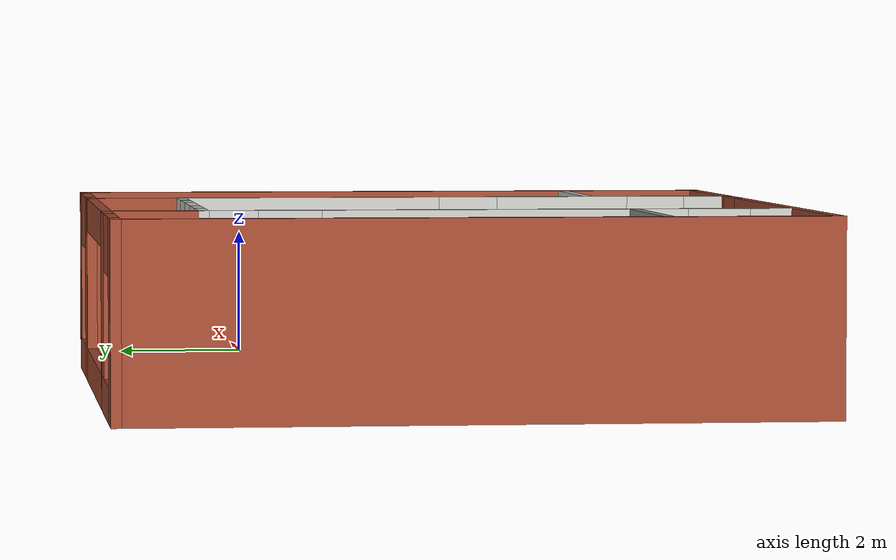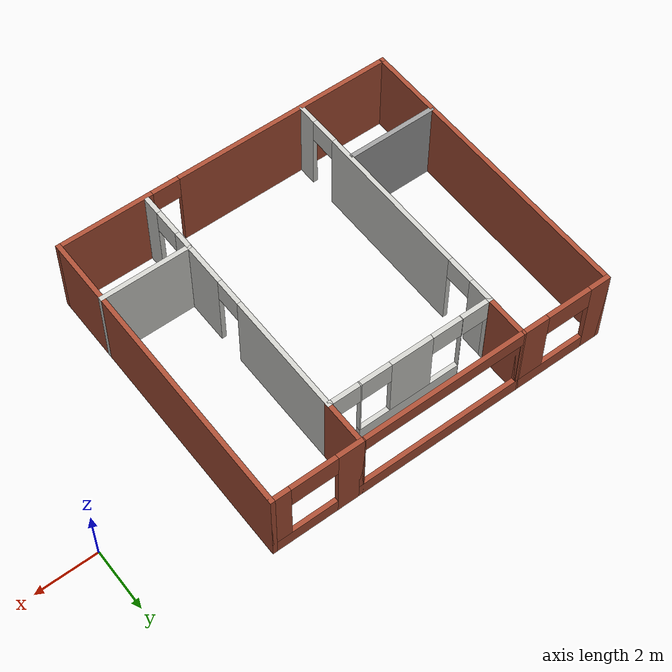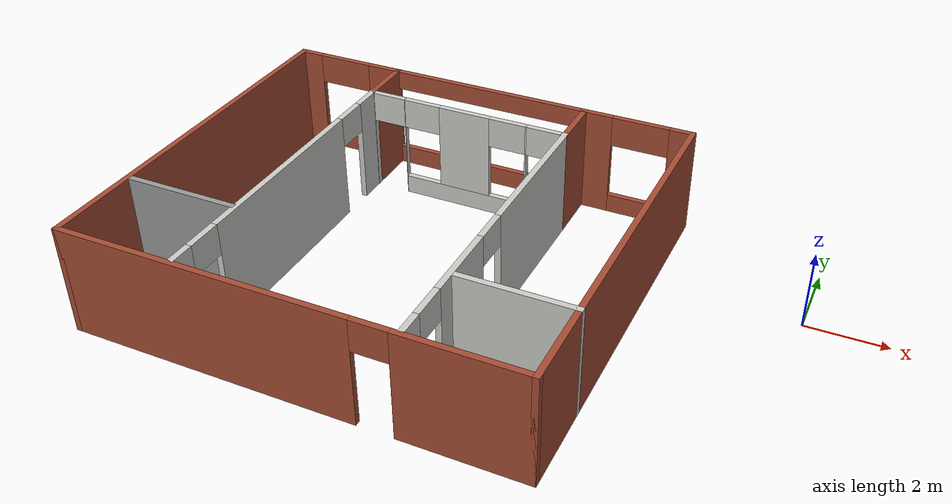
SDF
<?xml version='1.0'?>
<sdf version='1.6'>
  <model name='house'>
    <pose frame=''>-9.34944 -2.2 0 0 -0 0</pose>
    <link name='Wall_12'>
      <collision name='Wall_12_Collision'>
        <geometry>
          <box>
            <size>1.5 0.15 2.8</size>
          </box>
        </geometry>
        <pose frame=''>0 0 1.4 0 -0 0</pose>
      </collision>
      <visual name='Wall_12_Visual'>
        <pose frame=''>0 0 1.4 0 -0 0</pose>
        <geometry>
          <box>
            <size>1.5 0.15 2.8</size>
          </box>
        </geometry>
        <material>
          <script>
            <uri>file://media/materials/scripts/gazebo.material</uri>
            <name>Gazebo/Bricks</name>
          </script>
          <ambient>1 1 1 1</ambient>
        </material>
        <meta>
          <layer>0</layer>
        </meta>
      </visual>
      <pose frame=''>-2.65056 4.228 0 0 0 -1.5708</pose>
    </link>
    <link name='Wall_14'>
      <pose frame=''>0.040444 3.553 0 0 -0 0</pose>
      <visual name='Wall_14_Visual_0'>
        <pose frame=''>-2.6865 0 1.4 0 -0 0</pose>
        <geometry>
          <box>
            <size>0.159462 0.15 2.8</size>
          </box>
        </geometry>
        <material>
          <script>
            <uri>file://media/materials/scripts/gazebo.material</uri>
            <name>Gazebo/CeilingTiled</name>
          </script>
          <ambient>1 1 1 1</ambient>
        </material>
        <meta>
          <layer>0</layer>
        </meta>
      </visual>
      <collision name='Wall_14_Collision_0'>
        <geometry>
          <box>
            <size>0.159462 0.15 2.8</size>
          </box>
        </geometry>
        <pose frame=''>-2.6865 0 1.4 0 -0 0</pose>
      </collision>
      <visual name='Wall_14_Visual_1'>
        <pose frame=''>-1.70025 0 1.4 0 -0 0</pose>
        <geometry>
          <box>
            <size>0.013045 0.15 2.8</size>
          </box>
        </geometry>
        <material>
          <script>
            <uri>file://media/materials/scripts/gazebo.material</uri>
            <name>Gazebo/CeilingTiled</name>
          </script>
          <ambient>1 1 1 1</ambient>
        </material>
        <meta>
          <layer>0</layer>
        </meta>
      </visual>
      <collision name='Wall_14_Collision_1'>
        <geometry>
          <box>
            <size>0.013045 0.15 2.8</size>
          </box>
        </geometry>
        <pose frame=''>-1.70025 0 1.4 0 -0 0</pose>
      </collision>
      <visual name='Wall_14_Visual_2'>
        <pose frame=''>2.70996 0 1.4 0 -0 0</pose>
        <geometry>
          <box>
            <size>0.112546 0.15 2.8</size>
          </box>
        </geometry>
        <material>
          <script>
            <uri>file://media/materials/scripts/gazebo.material</uri>
            <name>Gazebo/CeilingTiled</name>
          </script>
          <ambient>1 1 1 1</ambient>
        </material>
        <meta>
          <layer>0</layer>
        </meta>
      </visual>
      <collision name='Wall_14_Collision_2'>
        <geometry>
          <box>
            <size>0.112546 0.15 2.8</size>
          </box>
        </geometry>
        <pose frame=''>2.70996 0 1.4 0 -0 0</pose>
      </collision>

      <visual name='Wall_14_Visual_4'>
        <pose frame=''>0.029981 0 0.25 0 -0 0</pose>
        <geometry>
          <box>
            <size>3.44741 0.15 0.5</size>
          </box>
        </geometry>
        <material>
          <script>
            <uri>file://media/materials/scripts/gazebo.material</uri>
            <name>Gazebo/CeilingTiled</name>
          </script>
          <ambient>1 1 1 1</ambient>
        </material>
        <meta>
          <layer>0</layer>
        </meta>
      </visual>
      <collision name='Wall_14_Collision_4'>
        <geometry>
          <box>
            <size>3.44741 0.15 0.5</size>
          </box>
        </geometry>
        <pose frame=''>0.029981 0 0.25 0 -0 0</pose>
      </collision>

      <visual name='Wall_14_Visual_6'>
        <pose frame=''>0.010082 0 1.65 0 -0 0</pose>
        <geometry>
          <box>
            <size>1.40761 0.15 2.3</size>
          </box>
        </geometry>
        <material>
          <script>
            <uri>file://media/materials/scripts/gazebo.material</uri>
            <name>Gazebo/CeilingTiled</name>
          </script>
          <ambient>1 1 1 1</ambient>
        </material>
        <meta>
          <layer>0</layer>
        </meta>
      </visual>
      <collision name='Wall_14_Collision_6'>
        <geometry>
          <box>
            <size>1.40761 0.15 2.3</size>
          </box>
        </geometry>
        <pose frame=''>0.010082 0 1.65 0 -0 0</pose>
      </collision>
      <visual name='Wall_14_Visual_7'>
        <pose frame=''>1.73379 0 1.65 0 -0 0</pose>
        <geometry>
          <box>
            <size>0.039797 0.15 2.3</size>
          </box>
        </geometry>
        <material>
          <script>
            <uri>file://media/materials/scripts/gazebo.material</uri>
            <name>Gazebo/CeilingTiled</name>
          </script>
          <ambient>1 1 1 1</ambient>
        </material>
        <meta>
          <layer>0</layer>
        </meta>
      </visual>
      <collision name='Wall_14_Collision_7'>
        <geometry>
          <box>
            <size>0.039797 0.15 2.3</size>
          </box>
        </geometry>
        <pose frame=''>1.73379 0 1.65 0 -0 0</pose>
      </collision>

      <visual name='Wall_14_Visual_9'>
        <pose frame=''>-1.19372 0 2.4 0 -0 0</pose>
        <geometry>
          <box>
            <size>1 0.15 0.8</size>
          </box>
        </geometry>
        <material>
          <script>
            <uri>file://media/materials/scripts/gazebo.material</uri>
            <name>Gazebo/CeilingTiled</name>
          </script>
          <ambient>1 1 1 1</ambient>
        </material>
        <meta>
          <layer>0</layer>
        </meta>
      </visual>
      <collision name='Wall_14_Collision_9'>
        <geometry>
          <box>
            <size>1 0.15 0.8</size>
          </box>
        </geometry>
        <pose frame=''>-1.19372 0 2.4 0 -0 0</pose>
      </collision>
      <visual name='Wall_14_Visual_10'>
        <pose frame=''>-2.15677 0 2.4 0 -0 0</pose>
        <geometry>
          <box>
            <size>0.9 0.15 0.8</size>
          </box>
        </geometry>
        <material>
          <script>
            <uri>file://media/materials/scripts/gazebo.material</uri>
            <name>Gazebo/CeilingTiled</name>
          </script>
          <ambient>1 1 1 1</ambient>
        </material>
        <meta>
          <layer>0</layer>
        </meta>
      </visual>
      <collision name='Wall_14_Collision_10'>
        <geometry>
          <box>
            <size>0.9 0.15 0.8</size>
          </box>
        </geometry>
        <pose frame=''>-2.15677 0 2.4 0 -0 0</pose>
      </collision>
      <visual name='Wall_14_Visual_11'>
        <pose frame=''>1.21389 0 2.4 0 -0 0</pose>
        <geometry>
          <box>
            <size>1 0.15 0.8</size>
          </box>
        </geometry>
        <material>
          <script>
            <uri>file://media/materials/scripts/gazebo.material</uri>
            <name>Gazebo/CeilingTiled</name>
          </script>
          <ambient>1 1 1 1</ambient>
        </material>
        <meta>
          <layer>0</layer>
        </meta>
      </visual>
      <collision name='Wall_14_Collision_11'>
        <geometry>
          <box>
            <size>1 0.15 0.8</size>
          </box>
        </geometry>
        <pose frame=''>1.21389 0 2.4 0 -0 0</pose>
      </collision>
      <visual name='Wall_14_Visual_12'>
        <pose frame=''>2.20369 0 2.4 0 -0 0</pose>
        <geometry>
          <box>
            <size>0.9 0.15 0.8</size>
          </box>
        </geometry>
        <material>
          <script>
            <uri>file://media/materials/scripts/gazebo.material</uri>
            <name>Gazebo/CeilingTiled</name>
          </script>
          <ambient>1 1 1 1</ambient>
        </material>
        <meta>
          <layer>0</layer>
        </meta>
      </visual>
      <collision name='Wall_14_Collision_12'>
        <geometry>
          <box>
            <size>0.9 0.15 0.8</size>
          </box>
        </geometry>
        <pose frame=''>2.20369 0 2.4 0 -0 0</pose>
      </collision>
    </link>
    <link name='Wall_2'>
      <pose frame=''>-4.15056 4.925 0 0 -0 0</pose>
      <visual name='Wall_2_Visual_0'>
        <pose frame=''>-1.22601 0 1.4 0 -0 0</pose>
        <geometry>
          <box>
            <size>0.697976 0.15 2.8</size>
          </box>
        </geometry>
        <material>
          <script>
            <uri>file://media/materials/scripts/gazebo.material</uri>
            <name>Gazebo/Bricks</name>
          </script>
          <ambient>1 1 1 1</ambient>
        </material>
        <meta>
          <layer>0</layer>
        </meta>
      </visual>
      <collision name='Wall_2_Collision_0'>
        <geometry>
          <box>
            <size>0.697976 0.15 2.8</size>
          </box>
        </geometry>
        <pose frame=''>-1.22601 0 1.4 0 -0 0</pose>
      </collision>
      <visual name='Wall_2_Visual_1'>
        <pose frame=''>0.348988 0 0.25 0 -0 0</pose>
        <geometry>
          <box>
            <size>2.45202 0.15 0.5</size>
          </box>
        </geometry>
        <material>
          <script>
            <uri>file://media/materials/scripts/gazebo.material</uri>
            <name>Gazebo/Bricks</name>
          </script>
          <ambient>1 1 1 1</ambient>
        </material>
        <meta>
          <layer>0</layer>
        </meta>
      </visual>
      <collision name='Wall_2_Collision_1'>
        <geometry>
          <box>
            <size>2.45202 0.15 0.5</size>
          </box>
        </geometry>
        <pose frame=''>0.348988 0 0.25 0 -0 0</pose>
      </collision>
      <visual name='Wall_2_Visual_2'>
        <pose frame=''>1.09899 0 1.65 0 -0 0</pose>
        <geometry>
          <box>
            <size>0.952024 0.15 2.3</size>
          </box>
        </geometry>
        <material>
          <script>
            <uri>file://media/materials/scripts/gazebo.material</uri>
            <name>Gazebo/Bricks</name>
          </script>
          <ambient>1 1 1 1</ambient>
        </material>
        <meta>
          <layer>0</layer>
        </meta>
      </visual>
      <collision name='Wall_2_Collision_2'>
        <geometry>
          <box>
            <size>0.952024 0.15 2.3</size>
          </box>
        </geometry>
        <pose frame=''>1.09899 0 1.65 0 -0 0</pose>
      </collision>
      <visual name='Wall_2_Visual_3'>
        <pose frame=''>-0.127024 0 2.4 0 -0 0</pose>
        <geometry>
          <box>
            <size>1.5 0.15 0.8</size>
          </box>
        </geometry>
        <material>
          <script>
            <uri>file://media/materials/scripts/gazebo.material</uri>
            <name>Gazebo/Bricks</name>
          </script>
          <ambient>1 1 1 1</ambient>
        </material>
        <meta>
          <layer>0</layer>
        </meta>
      </visual>
      <collision name='Wall_2_Collision_3'>
        <geometry>
          <box>
            <size>1.5 0.15 0.8</size>
          </box>
        </geometry>
        <pose frame=''>-0.127024 0 2.4 0 -0 0</pose>
      </collision>
    </link>
    <link name='Wall_3'>
      <pose frame=''>0.074445 4.925 0 0 -0 0</pose>
      <visual name='Wall_3_Visual_0'>
        <pose frame=''>-2.76234 0 1.4 0 -0 0</pose>
        <geometry>
          <box>
            <size>0.07533 0.15 2.8</size>
          </box>
        </geometry>
        <material>
          <script>
            <uri>file://media/materials/scripts/gazebo.material</uri>
            <name>Gazebo/Bricks</name>
          </script>
          <ambient>1 1 1 1</ambient>
        </material>
        <meta>
          <layer>0</layer>
        </meta>
      </visual>
      <collision name='Wall_3_Collision_0'>
        <geometry>
          <box>
            <size>0.07533 0.15 2.8</size>
          </box>
        </geometry>
        <pose frame=''>-2.76234 0 1.4 0 -0 0</pose>
      </collision>
      <visual name='Wall_3_Visual_1'>
        <pose frame=''>0.037665 0 0.25 0 -0 0</pose>
        <geometry>
          <box>
            <size>5.52467 0.15 0.5</size>
          </box>
        </geometry>
        <material>
          <script>
            <uri>file://media/materials/scripts/gazebo.material</uri>
            <name>Gazebo/Bricks</name>
          </script>
          <ambient>1 1 1 1</ambient>
        </material>
        <meta>
          <layer>0</layer>
        </meta>
      </visual>
      <collision name='Wall_3_Collision_1'>
        <geometry>
          <box>
            <size>5.52467 0.15 0.5</size>
          </box>
        </geometry>
        <pose frame=''>0.037665 0 0.25 0 -0 0</pose>
      </collision>
      <visual name='Wall_3_Visual_2'>
        <pose frame=''>2.71166 0 1.65 0 -0 0</pose>
        <geometry>
          <box>
            <size>0.17667 0.15 2.3</size>
          </box>
        </geometry>
        <material>
          <script>
            <uri>file://media/materials/scripts/gazebo.material</uri>
            <name>Gazebo/Bricks</name>
          </script>
          <ambient>1 1 1 1</ambient>
        </material>
        <meta>
          <layer>0</layer>
        </meta>
      </visual>
      <collision name='Wall_3_Collision_2'>
        <geometry>
          <box>
            <size>0.17667 0.15 2.3</size>
          </box>
        </geometry>
        <pose frame=''>2.71166 0 1.65 0 -0 0</pose>
      </collision>
      <visual name='Wall_3_Visual_3'>
        <pose frame=''>-0.05067 0 2.55 0 -0 0</pose>
        <geometry>
          <box>
            <size>5.348 0.15 0.5</size>
          </box>
        </geometry>
        <material>
          <script>
            <uri>file://media/materials/scripts/gazebo.material</uri>
            <name>Gazebo/Bricks</name>
          </script>
          <ambient>1 1 1 1</ambient>
        </material>
        <meta>
          <layer>0</layer>
        </meta>
      </visual>
      <collision name='Wall_3_Collision_3'>
        <geometry>
          <box>
            <size>5.348 0.15 0.5</size>
          </box>
        </geometry>
        <pose frame=''>-0.05067 0 2.55 0 -0 0</pose>
      </collision>
    </link>
    <link name='Wall_36'>
      <collision name='Wall_36_Collision'>
        <geometry>
          <box>
            <size>1.521 0.15 2.8</size>
          </box>
        </geometry>
        <pose frame=''>0 0 1.4 0 -0 0</pose>
      </collision>
      <visual name='Wall_36_Visual'>
        <pose frame=''>0 0 1.4 0 -0 0</pose>
        <geometry>
          <box>
            <size>1.521 0.15 2.8</size>
          </box>
        </geometry>
        <material>
          <script>
            <uri>file://media/materials/scripts/gazebo.material</uri>
            <name>Gazebo/Bricks</name>
          </script>
          <ambient>1 1 1 1</ambient>
        </material>
        <meta>
          <layer>0</layer>
        </meta>
      </visual>
      <pose frame=''>2.79944 4.2395 0 0 0 -1.5708</pose>
    </link>
    <link name='Wall_4'>
      <pose frame=''>4.22444 4.925 0 0 -0 0</pose>
      <visual name='Wall_4_Visual_0'>
        <pose frame=''>-1.07575 0 1.4 0 -0 0</pose>
        <geometry>
          <box>
            <size>0.848504 0.15 2.8</size>
          </box>
        </geometry>
        <material>
          <script>
            <uri>file://media/materials/scripts/gazebo.material</uri>
            <name>Gazebo/Bricks</name>
          </script>
          <ambient>1 1 1 1</ambient>
        </material>
        <meta>
          <layer>0</layer>
        </meta>
      </visual>
      <collision name='Wall_4_Collision_0'>
        <geometry>
          <box>
            <size>0.848504 0.15 2.8</size>
          </box>
        </geometry>
        <pose frame=''>-1.07575 0 1.4 0 -0 0</pose>
      </collision>
      <visual name='Wall_4_Visual_1'>
        <pose frame=''>0.424252 0 0.25 0 -0 0</pose>
        <geometry>
          <box>
            <size>2.1515 0.15 0.5</size>
          </box>
        </geometry>
        <material>
          <script>
            <uri>file://media/materials/scripts/gazebo.material</uri>
            <name>Gazebo/Bricks</name>
          </script>
          <ambient>1 1 1 1</ambient>
        </material>
        <meta>
          <layer>0</layer>
        </meta>
      </visual>
      <collision name='Wall_4_Collision_1'>
        <geometry>
          <box>
            <size>2.1515 0.15 0.5</size>
          </box>
        </geometry>
        <pose frame=''>0.424252 0 0.25 0 -0 0</pose>
      </collision>
      <visual name='Wall_4_Visual_2'>
        <pose frame=''>1.17425 0 1.65 0 -0 0</pose>
        <geometry>
          <box>
            <size>0.651496 0.15 2.3</size>
          </box>
        </geometry>
        <material>
          <script>
            <uri>file://media/materials/scripts/gazebo.material</uri>
            <name>Gazebo/Bricks</name>
          </script>
          <ambient>1 1 1 1</ambient>
        </material>
        <meta>
          <layer>0</layer>
        </meta>
      </visual>
      <collision name='Wall_4_Collision_2'>
        <geometry>
          <box>
            <size>0.651496 0.15 2.3</size>
          </box>
        </geometry>
        <pose frame=''>1.17425 0 1.65 0 -0 0</pose>
      </collision>
      <visual name='Wall_4_Visual_3'>
        <pose frame=''>0.098504 0 2.4 0 -0 0</pose>
        <geometry>
          <box>
            <size>1.5 0.15 0.8</size>
          </box>
        </geometry>
        <material>
          <script>
            <uri>file://media/materials/scripts/gazebo.material</uri>
            <name>Gazebo/Bricks</name>
          </script>
          <ambient>1 1 1 1</ambient>
        </material>
        <meta>
          <layer>0</layer>
        </meta>
      </visual>
      <collision name='Wall_4_Collision_3'>
        <geometry>
          <box>
            <size>1.5 0.15 0.8</size>
          </box>
        </geometry>
        <pose frame=''>0.098504 0 2.4 0 -0 0</pose>
      </collision>
    </link>
    <link name='Wall_41'>
      <pose frame=''>2.79944 -0.621 0 0 -0 1.5708</pose>
      <visual name='Wall_41_Visual_0'>
        <pose frame=''>-3.9395 0 1.4 0 -0 0</pose>
        <geometry>
          <box>
            <size>0.621 0.15 2.8</size>
          </box>
        </geometry>
        <material>
          <script>
            <uri>file://media/materials/scripts/gazebo.material</uri>
            <name>Gazebo/CeilingTiled</name>
          </script>
          <ambient>1 1 1 1</ambient>
        </material>
        <meta>
          <layer>0</layer>
        </meta>
      </visual>
      <collision name='Wall_41_Collision_0'>
        <geometry>
          <box>
            <size>0.621 0.15 2.8</size>
          </box>
        </geometry>
        <pose frame=''>-3.9395 0 1.4 0 -0 0</pose>
      </collision>
      <visual name='Wall_41_Visual_1'>
        <pose frame=''>-1.71426 0 1.4 0 -0 0</pose>
        <geometry>
          <box>
            <size>2.02948 0.15 2.8</size>
          </box>
        </geometry>
        <material>
          <script>
            <uri>file://media/materials/scripts/gazebo.material</uri>
            <name>Gazebo/CeilingTiled</name>
          </script>
          <ambient>1 1 1 1</ambient>
        </material>
        <meta>
          <layer>0</layer>
        </meta>
      </visual>
      <collision name='Wall_41_Collision_1'>
        <geometry>
          <box>
            <size>2.02948 0.15 2.8</size>
          </box>
        </geometry>
        <pose frame=''>-1.71426 0 1.4 0 -0 0</pose>
      </collision>
      <visual name='Wall_41_Visual_2'>
        <pose frame=''>2.22524 0 1.4 0 -0 0</pose>
        <geometry>
          <box>
            <size>4.04952 0.15 2.8</size>
          </box>
        </geometry>
        <material>
          <script>
            <uri>file://media/materials/scripts/gazebo.material</uri>
            <name>Gazebo/CeilingTiled</name>
          </script>
          <ambient>1 1 1 1</ambient>
        </material>
        <meta>
          <layer>0</layer>
        </meta>
      </visual>
      <collision name='Wall_41_Collision_2'>
        <geometry>
          <box>
            <size>4.04952 0.15 2.8</size>
          </box>
        </geometry>
        <pose frame=''>2.22524 0 1.4 0 -0 0</pose>
      </collision>

      <visual name='Wall_41_Visual_5'>
        <pose frame=''>-3.179 0 2.4 0 -0 0</pose>
        <geometry>
          <box>
            <size>0.9 0.15 0.8</size>
          </box>
        </geometry>
        <material>
          <script>
            <uri>file://media/materials/scripts/gazebo.material</uri>
            <name>Gazebo/CeilingTiled</name>
          </script>
          <ambient>1 1 1 1</ambient>
        </material>
        <meta>
          <layer>0</layer>
        </meta>
      </visual>
      <collision name='Wall_41_Collision_5'>
        <geometry>
          <box>
            <size>0.9 0.15 0.8</size>
          </box>
        </geometry>
        <pose frame=''>-3.179 0 2.4 0 -0 0</pose>
      </collision>
      <visual name='Wall_41_Visual_6'>
        <pose frame=''>-0.249524 0 2.4 0 -0 0</pose>
        <geometry>
          <box>
            <size>0.9 0.15 0.8</size>
          </box>
        </geometry>
        <material>
          <script>
            <uri>file://media/materials/scripts/gazebo.material</uri>
            <name>Gazebo/CeilingTiled</name>
          </script>
          <ambient>1 1 1 1</ambient>
        </material>
        <meta>
          <layer>0</layer>
        </meta>
      </visual>
      <collision name='Wall_41_Collision_6'>
        <geometry>
          <box>
            <size>0.9 0.15 0.8</size>
          </box>
        </geometry>
        <pose frame=''>-0.249524 0 2.4 0 -0 0</pose>
      </collision>
    </link>
    <link name='Wall_43'>
      <pose frame=''>-2.65056 -0.678 0 0 0 -1.5708</pose>
      <visual name='Wall_43_Visual_0'>
        <pose frame=''>-3.85891 0 1.4 0 -0 0</pose>
        <geometry>
          <box>
            <size>0.782186 0.15 2.8</size>
          </box>
        </geometry>
        <material>
          <script>
            <uri>file://media/materials/scripts/gazebo.material</uri>
            <name>Gazebo/CeilingTiled</name>
          </script>
          <ambient>1 1 1 1</ambient>
        </material>
        <meta>
          <layer>0</layer>
        </meta>
      </visual>
      <collision name='Wall_43_Collision_0'>
        <geometry>
          <box>
            <size>0.782186 0.15 2.8</size>
          </box>
        </geometry>
        <pose frame=''>-3.85891 0 1.4 0 -0 0</pose>
      </collision>
      <visual name='Wall_43_Visual_1'>
        <pose frame=''>0.052093 0 1.4 0 -0 0</pose>
        <geometry>
          <box>
            <size>5.23981 0.15 2.8</size>
          </box>
        </geometry>
        <material>
          <script>
            <uri>file://media/materials/scripts/gazebo.material</uri>
            <name>Gazebo/CeilingTiled</name>
          </script>
          <ambient>1 1 1 1</ambient>
        </material>
        <meta>
          <layer>0</layer>
        </meta>
      </visual>
      <collision name='Wall_43_Collision_1'>
        <geometry>
          <box>
            <size>5.23981 0.15 2.8</size>
          </box>
        </geometry>
        <pose frame=''>0.052093 0 1.4 0 -0 0</pose>
      </collision>
      <visual name='Wall_43_Visual_2'>
        <pose frame=''>3.911 0 1.4 0 -0 0</pose>
        <geometry>
          <box>
            <size>0.678 0.15 2.8</size>
          </box>
        </geometry>
        <material>
          <script>
            <uri>file://media/materials/scripts/gazebo.material</uri>
            <name>Gazebo/CeilingTiled</name>
          </script>
          <ambient>1 1 1 1</ambient>
        </material>
        <meta>
          <layer>0</layer>
        </meta>
      </visual>
      <collision name='Wall_43_Collision_2'>
        <geometry>
          <box>
            <size>0.678 0.15 2.8</size>
          </box>
        </geometry>
        <pose frame=''>3.911 0 1.4 0 -0 0</pose>
      </collision>

      <visual name='Wall_43_Visual_5'>
        <pose frame=''>-3.01781 0 2.4 0 -0 0</pose>
        <geometry>
          <box>
            <size>0.9 0.15 0.8</size>
          </box>
        </geometry>
        <material>
          <script>
            <uri>file://media/materials/scripts/gazebo.material</uri>
            <name>Gazebo/CeilingTiled</name>
          </script>
          <ambient>1 1 1 1</ambient>
        </material>
        <meta>
          <layer>0</layer>
        </meta>
      </visual>
      <collision name='Wall_43_Collision_5'>
        <geometry>
          <box>
            <size>0.9 0.15 0.8</size>
          </box>
        </geometry>
        <pose frame=''>-3.01781 0 2.4 0 -0 0</pose>
      </collision>
      <visual name='Wall_43_Visual_6'>
        <pose frame=''>3.122 0 2.4 0 -0 0</pose>
        <geometry>
          <box>
            <size>0.9 0.15 0.8</size>
          </box>
        </geometry>
        <material>
          <script>
            <uri>file://media/materials/scripts/gazebo.material</uri>
            <name>Gazebo/CeilingTiled</name>
          </script>
          <ambient>1 1 1 1</ambient>
        </material>
        <meta>
          <layer>0</layer>
        </meta>
      </visual>
      <collision name='Wall_43_Collision_6'>
        <geometry>
          <box>
            <size>0.9 0.15 0.8</size>
          </box>
        </geometry>
        <pose frame=''>3.122 0 2.4 0 -0 0</pose>
      </collision>
    </link>
    <link name='Wall_46'>
      <collision name='Wall_46_Collision'>
        <geometry>
          <box>
            <size>3 0.15 2.8</size>
          </box>
        </geometry>
        <pose frame=''>0 0 1.4 0 -0 0</pose>
      </collision>
      <visual name='Wall_46_Visual'>
        <pose frame=''>0 0 1.4 0 -0 0</pose>
        <geometry>
          <box>
            <size>3 0.15 2.8</size>
          </box>
        </geometry>
        <material>
          <script>
            <uri>file://media/materials/scripts/gazebo.material</uri>
            <name>Gazebo/Grey</name>
          </script>
          <ambient>1 1 1 1</ambient>
        </material>
        <meta>
          <layer>0</layer>
        </meta>
      </visual>
      <pose frame=''>-4.17156 -2.583 0 0 -0 0</pose>
    </link>
    <link name='Wall_49'>
      <collision name='Wall_49_Collision'>
        <geometry>
          <box>
            <size>2.98 0.15 2.8</size>
          </box>
        </geometry>
        <pose frame=''>0 0 1.4 0 -0 0</pose>
      </collision>
      <visual name='Wall_49_Visual'>
        <pose frame=''>0 0 1.4 0 -0 0</pose>
        <geometry>
          <box>
            <size>2.98 0.15 2.8</size>
          </box>
        </geometry>
        <material>
          <script>
            <uri>file://media/materials/scripts/gazebo.material</uri>
            <name>Gazebo/CeilingTiled</name>
          </script>
          <ambient>1 1 1 1</ambient>
        </material>
        <meta>
          <layer>0</layer>
        </meta>
      </visual>
      <pose frame=''>4.23556 -2.77325 0 0 -0 3.14159</pose>
    </link>
    <link name='Wall_5'>
      <collision name='Wall_5_Collision'>
        <geometry>
          <box>
            <size>10 0.15 2.8</size>
          </box>
        </geometry>
        <pose frame=''>0 0 1.4 0 -0 0</pose>
      </collision>
      <visual name='Wall_5_Visual'>
        <pose frame=''>0 0 1.4 0 -0 0</pose>
        <geometry>
          <box>
            <size>10 0.15 2.8</size>
          </box>
        </geometry>
        <material>
          <script>
            <uri>file://media/materials/scripts/gazebo.material</uri>
            <name>Gazebo/Bricks</name>
          </script>
          <ambient>1 1 1 1</ambient>
        </material>
        <meta>
          <layer>0</layer>
        </meta>
      </visual>
      <pose frame=''>5.64944 0 0 0 0 -1.5708</pose>
    </link>
    <link name='Wall_7'>
      <collision name='Wall_7_Collision'>
        <geometry>
          <box>
            <size>10 0.15 2.8</size>
          </box>
        </geometry>
        <pose frame=''>0 0 1.4 0 -0 0</pose>
      </collision>
      <visual name='Wall_7_Visual'>
        <pose frame=''>0 0 1.4 0 -0 0</pose>
        <geometry>
          <box>
            <size>10 0.15 2.8</size>
          </box>
        </geometry>
        <material>
          <script>
            <uri>file://media/materials/scripts/gazebo.material</uri>
            <name>Gazebo/Bricks</name>
          </script>
          <ambient>1 1 1 1</ambient>
        </material>
        <meta>
          <layer>0</layer>
        </meta>
      </visual>
      <pose frame=''>-5.65056 0 0 0 0 -1.5708</pose>
    </link>
    <link name='Wall_8'>
      <pose frame=''>-0.000556 -4.925 0 0 -0 0</pose>
      <visual name='Wall_8_Visual_0'>
        <pose frame=''>-2.02255 0 1.4 0 -0 0</pose>
        <geometry>
          <box>
            <size>7.4049 0.15 2.8</size>
          </box>
        </geometry>
        <material>
          <script>
            <uri>file://media/materials/scripts/gazebo.material</uri>
            <name>Gazebo/Bricks</name>
          </script>
          <ambient>1 1 1 1</ambient>
        </material>
        <meta>
          <layer>0</layer>
        </meta>
      </visual>
      <collision name='Wall_8_Collision_0'>
        <geometry>
          <box>
            <size>7.4049 0.15 2.8</size>
          </box>
        </geometry>
        <pose frame=''>-2.02255 0 1.4 0 -0 0</pose>
      </collision>
      <visual name='Wall_8_Visual_1'>
        <pose frame=''>4.15245 0 1.4 0 -0 0</pose>
        <geometry>
          <box>
            <size>3.1451 0.15 2.8</size>
          </box>
        </geometry>
        <material>
          <script>
            <uri>file://media/materials/scripts/gazebo.material</uri>
            <name>Gazebo/Bricks</name>
          </script>
          <ambient>1 1 1 1</ambient>
        </material>
        <meta>
          <layer>0</layer>
        </meta>
      </visual>
      <collision name='Wall_8_Collision_1'>
        <geometry>
          <box>
            <size>3.1451 0.15 2.8</size>
          </box>
        </geometry>
        <pose frame=''>4.15245 0 1.4 0 -0 0</pose>
      </collision>

      <visual name='Wall_8_Visual_3'>
        <pose frame=''>2.1299 0 2.4 0 -0 0</pose>
        <geometry>
          <box>
            <size>0.9 0.15 0.8</size>
          </box>
        </geometry>
        <material>
          <script>
            <uri>file://media/materials/scripts/gazebo.material</uri>
            <name>Gazebo/Bricks</name>
          </script>
          <ambient>1 1 1 1</ambient>
        </material>
        <meta>
          <layer>0</layer>
        </meta>
      </visual>
      <collision name='Wall_8_Collision_3'>
        <geometry>
          <box>
            <size>0.9 0.15 0.8</size>
          </box>
        </geometry>
        <pose frame=''>2.1299 0 2.4 0 -0 0</pose>
      </collision>
    </link>
    <static>1</static>
  </model>
</sdf>
